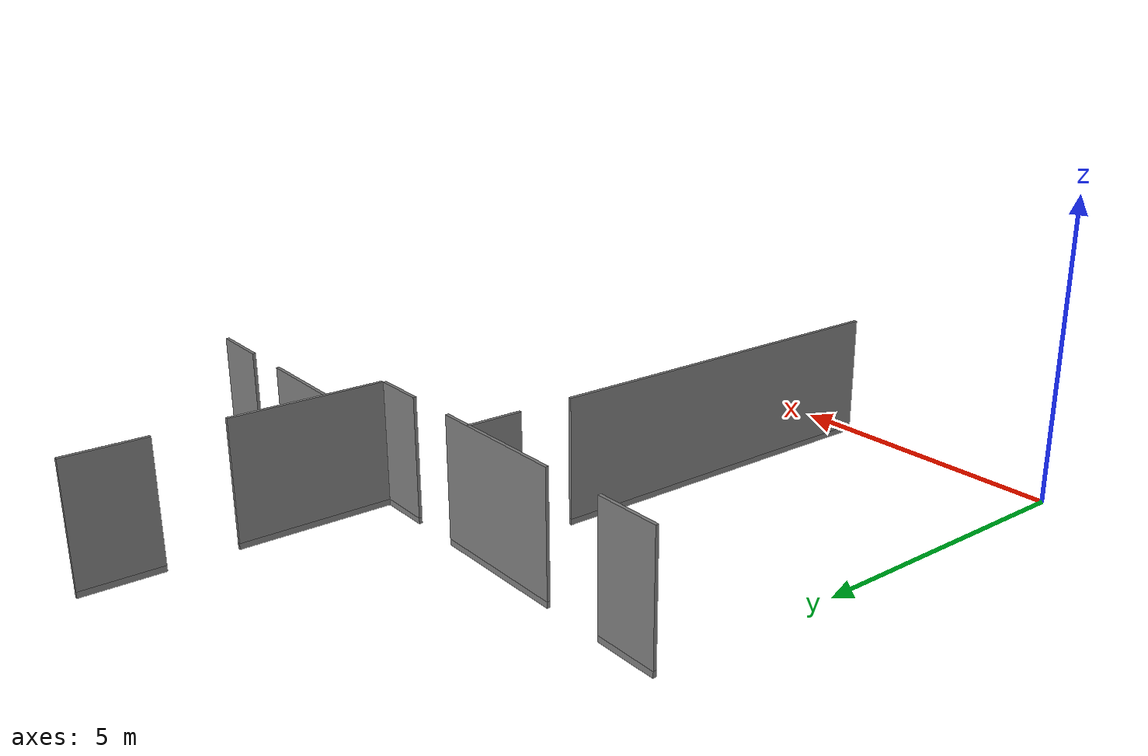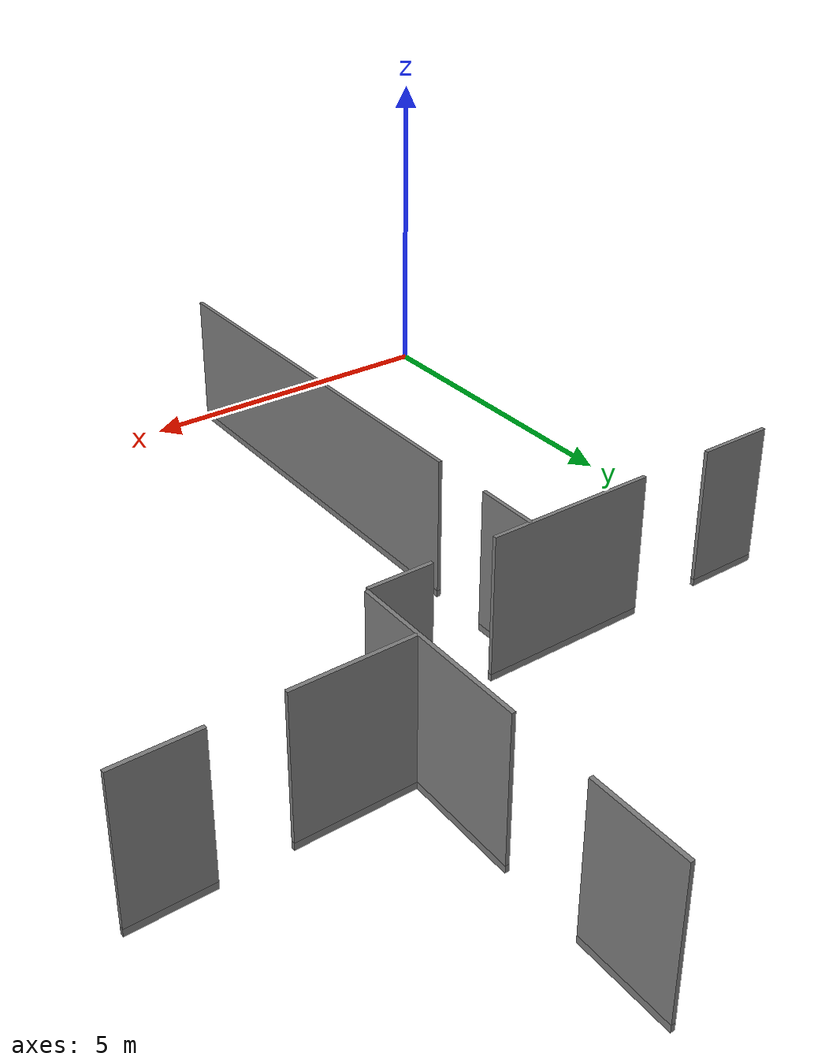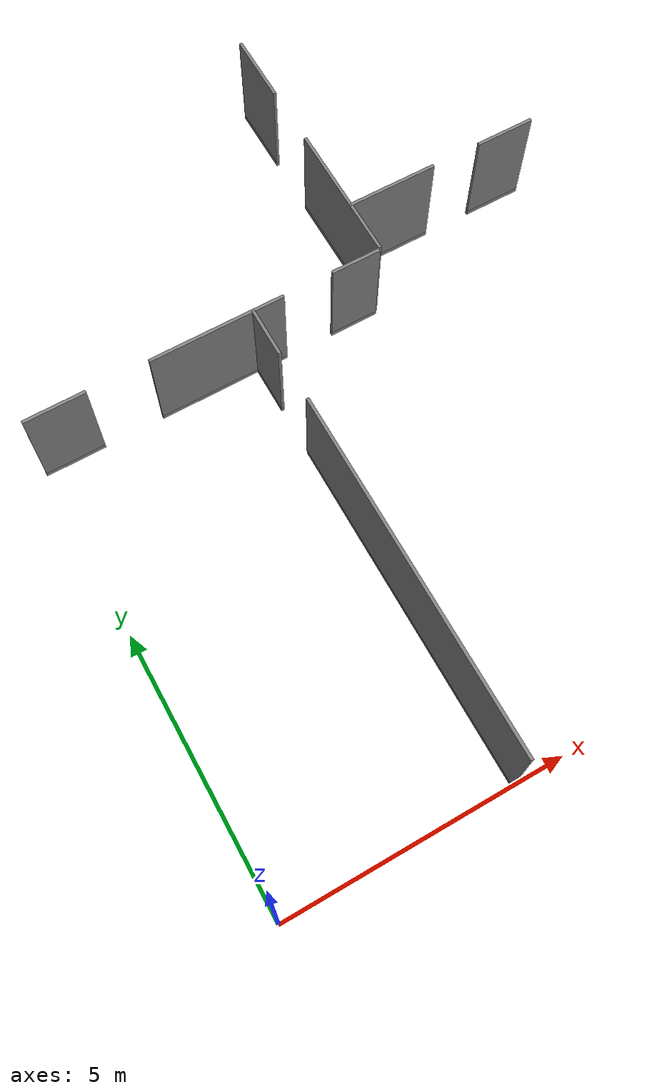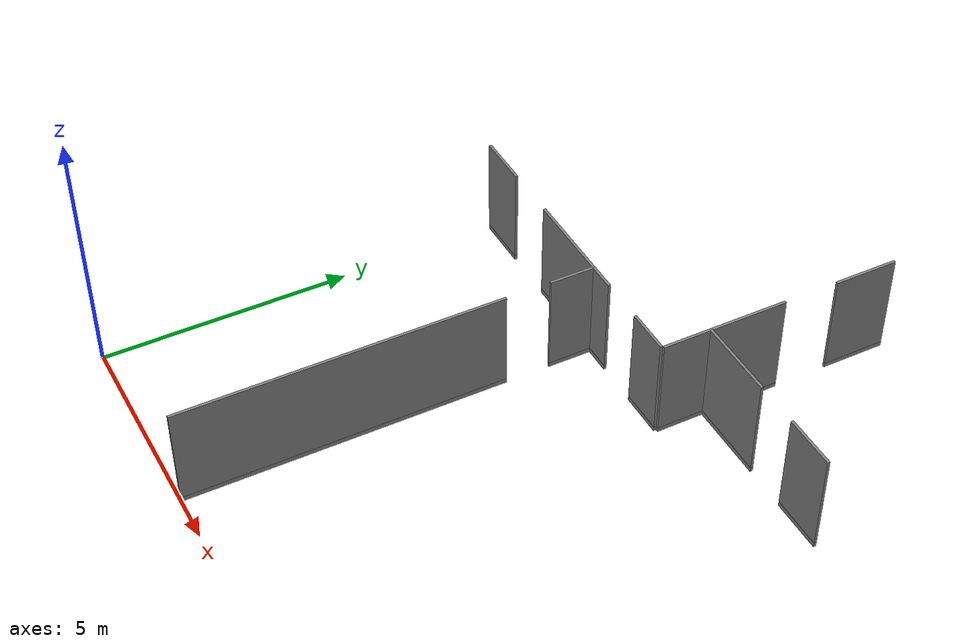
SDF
<?xml version="1.0" ?>
<sdf version="1.4">
    <model name='full_inside_wall'>
      <link name='link'>
        <inertial>
          <mass>50</mass>
          <inertia>
            <ixx>1</ixx>
            <ixy>0</ixy>
            <ixz>0</ixz>
            <iyy>1</iyy>
            <iyz>0</iyz>
            <izz>1</izz>
          </inertia>
        </inertial>
        <visual name='x05y01_08_bottom_frame'>
          <pose>4.075 3.215 0.05 0 0 0</pose>
          <geometry>
            <box>
              <size>0.055 6.43 0.1</size>
            </box>
          </geometry>
          <material>
            <!-- hsr_color/white -->
            <name>white</name>
            <ambient>1 1 1 1</ambient>
            <diffuse>0.5 0.5 0.5 1</diffuse>
            <specular>0 0 0 1</specular>
            <emissive>0 0 0 1</emissive>
            <shading>gouraud</shading>
            <receive_shadows>on</receive_shadows>
          </material>
        </visual>
        <collision name='x05y01_08_collision_bottom_frame'>
          <pose>4.075 3.215 0.05 0 0 0</pose>
          <geometry>
            <box>
              <size>0.055 6.43 0.1</size>
            </box>
          </geometry>
          <max_contacts>10</max_contacts>
          <surface>
            <bounce/>
            <friction>
              <ode/>
            </friction>
            <contact>
              <ode/>
            </contact>
          </surface>
        </collision>
        <visual name='x05y01_08_wall'>
          <pose>4.075 3.215 1.095 0 0 0</pose>
          <geometry>
            <box>
              <size>0.055 6.43 1.99</size>
            </box>
          </geometry>
          <material>
            <!-- wall/white_noise -->
            <name>white_noise</name>
            <ambient>1 1 1 1</ambient>
            <diffuse>0.5 0.5 0.5 1.0</diffuse>
            <specular>0 0 0 1.0</specular>
            <shininess>12.5</shininess>
            <pbr>
              <metal>
                <albedo_map>model://base_materials/wall/textures/wall_white_noise.png</albedo_map>
                <max_anisotropy>16</max_anisotropy>
                <metalness>0</metalness>
              </metal>
            </pbr>
          </material>
        </visual>
        <collision name='x05y01_08_collision_wall'>
          <pose>4.075 3.2150 1.095 0 0 0</pose>
          <geometry>
            <box>
              <size>0.055 6.43 1.99</size>
            </box>
          </geometry>
          <max_contacts>10</max_contacts>
          <surface>
            <bounce/>
            <friction>
              <ode/>
            </friction>
            <contact>
              <ode/>
            </contact>
          </surface>
        </collision>
        <visual name='x05y10_bottom_frame'>
          <pose>4.075 7.78 0.05 0 0 0</pose>
          <geometry>
            <box>
              <size>0.055 0.9 0.1</size>
            </box>
          </geometry>
          <material>
            <!-- hsr_color/white -->
            <name>white</name>
            <ambient>1 1 1 1</ambient>
            <diffuse>0.5 0.5 0.5 1</diffuse>
            <specular>0 0 0 1</specular>
            <emissive>0 0 0 1</emissive>
            <shading>gouraud</shading>
            <receive_shadows>on</receive_shadows>
          </material>
        </visual>
        <collision name='x05y10_collision_bottom_frame'>
          <pose>4.075 7.78 0.05 0 0 0</pose>
          <geometry>
            <box>
              <size>0.055 0.9 0.1</size>
            </box>
          </geometry>
          <max_contacts>10</max_contacts>
          <surface>
            <bounce/>
            <friction>
              <ode/>
            </friction>
            <contact>
              <ode/>
            </contact>
          </surface>
        </collision>
        <visual name='x05y10_wall'>
          <pose>4.075 7.78 1.095 0 0 0</pose>
          <geometry>
            <box>
              <size>0.055 0.9 1.99</size>
            </box>
          </geometry>
          <material>
            <!-- wall/white_noise -->
            <name>white_noise</name>
            <ambient>1 1 1 1</ambient>
            <diffuse>0.5 0.5 0.5 1.0</diffuse>
            <specular>0 0 0 1.0</specular>
            <shininess>12.5</shininess>
            <pbr>
              <metal>
                <albedo_map>model://base_materials/wall/textures/wall_white_noise.png</albedo_map>
                <max_anisotropy>16</max_anisotropy>
                <metalness>0</metalness>
              </metal>
            </pbr>
          </material>
        </visual>
        <collision name='x05y10_collision_wall'>
          <pose>4.075 7.78 1.095 0 0 0</pose>
          <geometry>
            <box>
              <size>0.055 0.9 1.99</size>
            </box>
          </geometry>
          <max_contacts>10</max_contacts>
          <surface>
            <bounce/>
            <friction>
              <ode/>
            </friction>
            <contact>
              <ode/>
            </contact>
          </surface>
        </collision>

        <visual name='x01_02_y09_bottom_frame'>
          <pose>0.55 8.23 0.05 0 0 1.5708</pose>
          <geometry>
            <box>
              <size>0.055 1.1 0.1</size>
            </box>
          </geometry>
          <material>
            <!-- hsr_color/white -->
            <name>white</name>
            <ambient>1 1 1 1</ambient>
            <diffuse>0.5 0.5 0.5 1</diffuse>
            <specular>0 0 0 1</specular>
            <emissive>0 0 0 1</emissive>
            <shading>gouraud</shading>
            <receive_shadows>on</receive_shadows>
          </material>
        </visual>
        <collision name='x01_02_y09_collision_bottom_frame'>
          <pose>0.55 8.23 0.05 0 0 1.5708</pose>
          <geometry>
            <box>
              <size>0.055 1.1 0.1</size>
            </box>
          </geometry>
          <max_contacts>10</max_contacts>
          <surface>
            <bounce/>
            <friction>
              <ode/>
            </friction>
            <contact>
              <ode/>
            </contact>
          </surface>
        </collision>
        <visual name='x01_02_y09_wall'>
          <pose>0.55 8.23 1.095 0 0 1.5708</pose>
          <geometry>
            <box>
              <size>0.055 1.1 1.99</size>
            </box>
          </geometry>
          <material>
            <!-- wall/white_noise -->
            <name>white_noise</name>
            <ambient>1 1 1 1</ambient>
            <diffuse>0.5 0.5 0.5 1.0</diffuse>
            <specular>0 0 0 1.0</specular>
            <shininess>12.5</shininess>
            <pbr>
              <metal>
                <albedo_map>model://base_materials/wall/textures/wall_white_noise.png</albedo_map>
                <max_anisotropy>16</max_anisotropy>
                <metalness>0</metalness>
              </metal>
            </pbr>
          </material>
        </visual>
        <collision name='x01_02_y09_collision_wall'>
          <pose>0.55 8.23 1.095 0 0 1.5708</pose>
          <geometry>
            <box>
              <size>0.055 1.1 1.99</size>
            </box>
          </geometry>
          <max_contacts>10</max_contacts>
          <surface>
            <bounce/>
            <friction>
              <ode/>
            </friction>
            <contact>
              <ode/>
            </contact>
          </surface>
        </collision>
        <visual name='x04_07_y09_bottom_frame'>
          <pose>3.42 8.23 0.05 0 0 1.5708</pose>
          <geometry>
            <box>
              <size>0.055 2.44 0.1</size>
            </box>
          </geometry>
          <material>
            <!-- hsr_color/white -->
            <name>white</name>
            <ambient>1 1 1 1</ambient>
            <diffuse>0.5 0.5 0.5 1</diffuse>
            <specular>0 0 0 1</specular>
            <emissive>0 0 0 1</emissive>
            <shading>gouraud</shading>
            <receive_shadows>on</receive_shadows>
          </material>
        </visual>
        <collision name='x04_07_y09_collision_bottom_frame'>
          <pose>3.42 8.23 0.05 0 0 1.5708</pose>
          <geometry>
            <box>
              <size>0.055 2.44 0.1</size>
            </box>
          </geometry>
          <max_contacts>10</max_contacts>
          <surface>
            <bounce/>
            <friction>
              <ode/>
            </friction>
            <contact>
              <ode/>
            </contact>
          </surface>
        </collision>
        <visual name='x04_07_y09_wall'>
          <pose>3.42 8.23 1.095 0 0 1.5708</pose>
          <geometry>
            <box>
              <size>0.055 2.44 1.99</size>
            </box>
          </geometry>
          <material>
            <!-- wall/white_noise -->
            <name>white_noise</name>
            <ambient>1 1 1 1</ambient>
            <diffuse>0.5 0.5 0.5 1.0</diffuse>
            <specular>0 0 0 1.0</specular>
            <shininess>12.5</shininess>
            <pbr>
              <metal>
                <albedo_map>model://base_materials/wall/textures/wall_white_noise.png</albedo_map>
                <max_anisotropy>16</max_anisotropy>
                <metalness>0</metalness>
              </metal>
            </pbr>
          </material>
        </visual>
        <collision name='x04_07_y09_collision_wall'>
          <pose>3.42 8.23 1.095 0 0 1.5708</pose>
          <geometry>
            <box>
              <size>0.055 2.44 1.99</size>
            </box>
          </geometry>
          <max_contacts>10</max_contacts>
          <surface>
            <bounce/>
            <friction>
              <ode/>
            </friction>
            <contact>
              <ode/>
            </contact>
          </surface>
        </collision>
        <visual name='x08y10a_bottom_frame'>
          <pose>5.9925 8.23 0.05 0 0 1.5708</pose>
          <geometry>
            <box>
              <size>0.055 0.9 0.1</size>
            </box>
          </geometry>
          <material>
            <!-- hsr_color/white -->
            <name>white</name>
            <ambient>1 1 1 1</ambient>
            <diffuse>0.5 0.5 0.5 1</diffuse>
            <specular>0 0 0 1</specular>
            <emissive>0 0 0 1</emissive>
            <shading>gouraud</shading>
            <receive_shadows>on</receive_shadows>
          </material>
        </visual>
        <collision name='x08y10a_collision_bottom_frame'>
          <pose>5.9925 8.23 0.05 0 0 1.5708</pose>
          <geometry>
            <box>
              <size>0.055 0.9 0.1</size>
            </box>
          </geometry>
          <max_contacts>10</max_contacts>
          <surface>
            <bounce/>
            <friction>
              <ode/>
            </friction>
            <contact>
              <ode/>
            </contact>
          </surface>
        </collision>
        <visual name='x08y10a_wall'>
          <pose>5.9925 8.23 1.095 0 0 1.5708</pose>
          <geometry>
            <box>
              <size>0.055 0.9 1.99</size>
            </box>
          </geometry>
          <material>
            <!-- wall/white_noise -->
            <name>white_noise</name>
            <ambient>1 1 1 1</ambient>
            <diffuse>0.5 0.5 0.5 1.0</diffuse>
            <specular>0 0 0 1.0</specular>
            <shininess>12.5</shininess>
            <pbr>
              <metal>
                <albedo_map>model://base_materials/wall/textures/wall_white_noise.png</albedo_map>
                <max_anisotropy>16</max_anisotropy>
                <metalness>0</metalness>
              </metal>
            </pbr>
          </material>
        </visual>
        <collision name='x08y10a_collision_wall'>
          <pose>5.9925 8.23 1.095 0 0 1.5708</pose>
          <geometry>
            <box>
              <size>0.055 0.9 1.99</size>
            </box>
          </geometry>
          <max_contacts>10</max_contacts>
          <surface>
            <bounce/>
            <friction>
              <ode/>
            </friction>
            <contact>
              <ode/>
            </contact>
          </surface>
        </collision>

        <visual name='x08y14_15_bottom_frame'>
          <pose>6.47 12.54 0.05 0 0 0</pose>
          <geometry>
            <box>
              <size>0.055 1.28 0.1</size>
            </box>
          </geometry>
          <material>
            <!-- hsr_color/white -->
            <name>white</name>
            <ambient>1 1 1 1</ambient>
            <diffuse>0.5 0.5 0.5 1</diffuse>
            <specular>0 0 0 1</specular>
            <emissive>0 0 0 1</emissive>
            <shading>gouraud</shading>
            <receive_shadows>on</receive_shadows>
          </material>
        </visual>
        <collision name='x08y14_15_collision_bottom_frame'>
          <pose>6.47 12.54 0.05 0 0 0</pose>
          <geometry>
            <box>
              <size>0.055 1.28 0.1</size>
            </box>
          </geometry>
          <max_contacts>10</max_contacts>
          <surface>
            <bounce/>
            <friction>
              <ode/>
            </friction>
            <contact>
              <ode/>
            </contact>
          </surface>
        </collision>
        <visual name='x08y14_15_wall'>
          <pose>6.47 12.54 1.095 0 0 0</pose>
          <geometry>
            <box>
              <size>0.055 1.28 1.99</size>
            </box>
          </geometry>
          <material>
            <!-- wall/white_noise -->
            <name>white_noise</name>
            <ambient>1 1 1 1</ambient>
            <diffuse>0.5 0.5 0.5 1.0</diffuse>
            <specular>0 0 0 1.0</specular>
            <shininess>12.5</shininess>
            <pbr>
              <metal>
                <albedo_map>model://base_materials/wall/textures/wall_white_noise.png</albedo_map>
                <max_anisotropy>16</max_anisotropy>
                <metalness>0</metalness>
              </metal>
            </pbr>
          </material>
        </visual>
        <collision name='x08y14_15_collision_wall'>
          <pose>6.47 12.54 1.095 0 0 0</pose>
          <geometry>
            <box>
              <size>0.055 1.28 1.99</size>
            </box>
          </geometry>
          <max_contacts>10</max_contacts>
          <surface>
            <bounce/>
            <friction>
              <ode/>
            </friction>
            <contact>
              <ode/>
            </contact>
          </surface>
        </collision>
        <visual name='x08y10b_12_bottom_frame'>
          <pose>6.47 9.52875 0.05 0 0 0</pose>
          <geometry>
            <box>
              <size>0.055 2.5425 0.1</size>
            </box>
          </geometry>
          <material>
            <!-- hsr_color/white -->
            <name>white</name>
            <ambient>1 1 1 1</ambient>
            <diffuse>0.5 0.5 0.5 1</diffuse>
            <specular>0 0 0 1</specular>
            <emissive>0 0 0 1</emissive>
            <shading>gouraud</shading>
            <receive_shadows>on</receive_shadows>
          </material>
        </visual>
        <collision name='x08y10b_12_collision_bottom_frame'>
          <pose>6.47 9.52875 0.05 0 0 0</pose>
          <geometry>
            <box>
              <size>0.055 2.5425 0.1</size>
            </box>
          </geometry>
          <max_contacts>10</max_contacts>
          <surface>
            <bounce/>
            <friction>
              <ode/>
            </friction>
            <contact>
              <ode/>
            </contact>
          </surface>
        </collision>
        <visual name='x08y10b_12_wall'>
          <pose>6.47 9.52875 1.095 0 0 0</pose>
          <geometry>
            <box>
              <size>0.055 2.5425 1.99</size>
            </box>
          </geometry>
          <material>
            <!-- wall/white_noise -->
            <name>white_noise</name>
            <ambient>1 1 1 1</ambient>
            <diffuse>0.5 0.5 0.5 1.0</diffuse>
            <specular>0 0 0 1.0</specular>
            <shininess>12.5</shininess>
            <pbr>
              <metal>
                <albedo_map>model://base_materials/wall/textures/wall_white_noise.png</albedo_map>
                <max_anisotropy>16</max_anisotropy>
                <metalness>0</metalness>
              </metal>
            </pbr>
          </material>
        </visual>
        <collision name='x08y10b_12_collision_wall'>
          <pose>6.47 9.52875 1.095 0 0 0</pose>
          <geometry>
            <box>
              <size>0.055 2.5425 1.99</size>
            </box>
          </geometry>
          <max_contacts>10</max_contacts>
          <surface>
            <bounce/>
            <friction>
              <ode/>
            </friction>
            <contact>
              <ode/>
            </contact>
          </surface>
        </collision>
        <visual name='x08_09y11b_bottom_frame'>
          <pose>7.284 9.23 0.05 0 0 1.5708</pose>
          <geometry>
            <box>
              <size>0.055 1.632 0.1</size>
            </box>
          </geometry>
          <material>
            <!-- hsr_color/white -->
            <name>white</name>
            <ambient>1 1 1 1</ambient>
            <diffuse>0.5 0.5 0.5 1</diffuse>
            <specular>0 0 0 1</specular>
            <emissive>0 0 0 1</emissive>
            <shading>gouraud</shading>
            <receive_shadows>on</receive_shadows>
          </material>
        </visual>
        <collision name='x08_09y11b_collision_bottom_frame'>
          <pose>7.284 9.23 0.05 0 0 1.5708</pose>
          <geometry>
            <box>
              <size>0.055 1.632 0.1</size>
            </box>
          </geometry>
          <max_contacts>10</max_contacts>
          <surface>
            <bounce/>
            <friction>
              <ode/>
            </friction>
            <contact>
              <ode/>
            </contact>
          </surface>
        </collision>
        <visual name='x08_09y11b_wall'>
          <pose>7.284 9.23 1.095 0 0 1.5708</pose>
          <geometry>
            <box>
              <size>0.055 1.632 1.99</size>
            </box>
          </geometry>
          <material>
            <!-- wall/white_noise -->
            <name>white_noise</name>
            <ambient>1 1 1 1</ambient>
            <diffuse>0.5 0.5 0.5 1.0</diffuse>
            <specular>0 0 0 1.0</specular>
            <shininess>12.5</shininess>
            <pbr>
              <metal>
                <albedo_map>model://base_materials/wall/textures/wall_white_noise.png</albedo_map>
                <max_anisotropy>16</max_anisotropy>
                <metalness>0</metalness>
              </metal>
            </pbr>
          </material>
        </visual>
        <collision name='x08_09y11b_collision_wall'>
          <pose>7.284 9.23 1.095 0 0 1.5708</pose>
          <geometry>
            <box>
              <size>0.055 1.632 1.99</size>
            </box>
          </geometry>
          <max_contacts>10</max_contacts>
          <surface>
            <bounce/>
            <friction>
              <ode/>
            </friction>
            <contact>
              <ode/>
            </contact>
          </surface>
        </collision>

        <visual name='x11_12y11_bottom_frame'>
          <pose>9.5375 9.23 0.05 0 0 1.5708</pose>
          <geometry>
            <box>
              <size>0.055 1.075 0.1</size>
            </box>
          </geometry>
          <material>
            <!-- hsr_color/white -->
            <name>white</name>
            <ambient>1 1 1 1</ambient>
            <diffuse>0.5 0.5 0.5 1</diffuse>
            <specular>0 0 0 1</specular>
            <emissive>0 0 0 1</emissive>
            <shading>gouraud</shading>
            <receive_shadows>on</receive_shadows>
          </material>
        </visual>
        <collision name='x11_12y11_collision_bottom_frame'>
          <pose>9.5375 9.23 0.05 0 0 1.5708</pose>
          <geometry>
            <box>
              <size>0.055 1.075 0.1</size>
            </box>
          </geometry>
          <max_contacts>10</max_contacts>
          <surface>
            <bounce/>
            <friction>
              <ode/>
            </friction>
            <contact>
              <ode/>
            </contact>
          </surface>
        </collision>
        <visual name='x11_12y11_wall'>
          <pose>9.5375 9.23 1.095 0 0 1.5708</pose>
          <geometry>
            <box>
              <size>0.055 1.075 1.99</size>
            </box>
          </geometry>
          <material>
            <!-- wall/white_noise -->
            <name>white_noise</name>
            <ambient>1 1 1 1</ambient>
            <diffuse>0.5 0.5 0.5 1.0</diffuse>
            <specular>0 0 0 1.0</specular>
            <shininess>12.5</shininess>
            <pbr>
              <metal>
                <albedo_map>model://base_materials/wall/textures/wall_white_noise.png</albedo_map>
                <max_anisotropy>16</max_anisotropy>
                <metalness>0</metalness>
              </metal>
            </pbr>
          </material>
        </visual>
        <collision name='x11_12y11_collision_wall'>
          <pose>9.5375 9.23 1.095 0 0 1.5708</pose>
          <geometry>
            <box>
              <size>0.055 1.075 1.99</size>
            </box>
          </geometry>
          <max_contacts>10</max_contacts>
          <surface>
            <bounce/>
            <friction>
              <ode/>
            </friction>
            <contact>
              <ode/>
            </contact>
          </surface>
        </collision>

        <velocity_decay>
          <linear>0</linear>
          <angular>0</angular>
        </velocity_decay>
        <self_collide>0</self_collide>
        <kinematic>0</kinematic>
        <gravity>1</gravity>
      </link>
      <static>1</static>
    </model>
</sdf>
